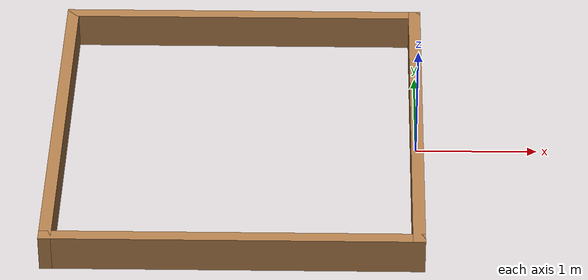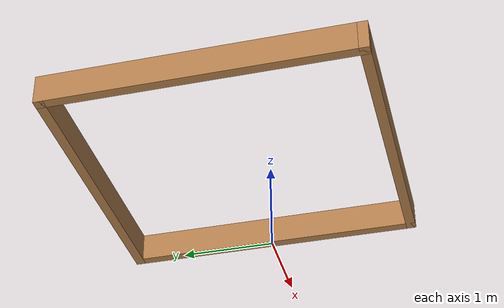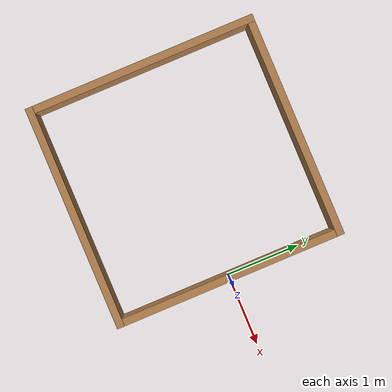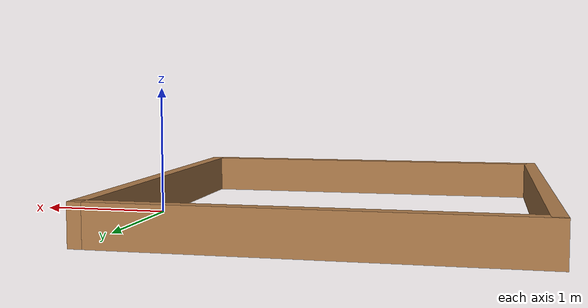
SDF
<?xml version='1.0'?>
<sdf version='1.7'>
  <model name='fg4walled'>
    <pose>-1.474 0 0 0 -0 0</pose>
    <link name='Wall_0'>
      <collision name='Wall_0_Collision'>
        <geometry>
          <box>
            <size>3.048 0.1 0.304</size>
          </box>
        </geometry>
        <pose>0 0 0.152 0 -0 0</pose>
      </collision>
      <visual name='Wall_0_Visual'>
        <pose>0 0 0.152 0 -0 0</pose>
        <geometry>
          <box>
            <size>3.048 0.1 0.304</size>
          </box>
        </geometry>
        <material>
          <script>
            <uri>file://media/materials/scripts/gazebo.material</uri>
            <name>Gazebo/Wood</name>
          </script>
          <ambient>1 1 1 1</ambient>
        </material>
        <meta>
          <layer>0</layer>
        </meta>
      </visual>
      <pose>-0 -1.524 0 0 -0 3.14159</pose>
    </link>
    <link name='Wall_3'>
      <collision name='Wall_3_Collision'>
        <geometry>
          <box>
            <size>3.148 0.1 0.304</size>
          </box>
        </geometry>
        <pose>0 0 0.152 0 -0 0</pose>
      </collision>
      <visual name='Wall_3_Visual'>
        <pose>0 0 0.152 0 -0 0</pose>
        <geometry>
          <box>
            <size>3.148 0.1 0.304</size>
          </box>
        </geometry>
        <material>
          <script>
            <uri>file://media/materials/scripts/gazebo.material</uri>
            <name>Gazebo/Wood</name>
          </script>
          <ambient>1 1 1 1</ambient>
        </material>
        <meta>
          <layer>0</layer>
        </meta>
      </visual>
      <pose>-1.474 0 0 0 -0 1.5708</pose>
    </link>
    <link name='Wall_5'>
      <collision name='Wall_5_Collision'>
        <geometry>
          <box>
            <size>3.048 0.1 0.304</size>
          </box>
        </geometry>
        <pose>0 0 0.152 0 -0 0</pose>
      </collision>
      <visual name='Wall_5_Visual'>
        <pose>0 0 0.152 0 -0 0</pose>
        <geometry>
          <box>
            <size>3.048 0.1 0.304</size>
          </box>
        </geometry>
        <material>
          <script>
            <uri>file://media/materials/scripts/gazebo.material</uri>
            <name>Gazebo/Wood</name>
          </script>
          <ambient>1 1 1 1</ambient>
        </material>
        <meta>
          <layer>0</layer>
        </meta>
      </visual>
      <pose>-0 1.524 0 0 -0 0</pose>
    </link>
    <link name='Wall_7'>
      <collision name='Wall_7_Collision'>
        <geometry>
          <box>
            <size>3.148 0.1 0.304</size>
          </box>
        </geometry>
        <pose>0 0 0.152 0 -0 0</pose>
      </collision>
      <visual name='Wall_7_Visual'>
        <pose>0 0 0.152 0 -0 0</pose>
        <geometry>
          <box>
            <size>3.148 0.1 0.304</size>
          </box>
        </geometry>
        <material>
          <script>
            <uri>file://media/materials/scripts/gazebo.material</uri>
            <name>Gazebo/Wood</name>
          </script>
          <ambient>1 1 1 1</ambient>
        </material>
        <meta>
          <layer>0</layer>
        </meta>
      </visual>
      <pose>1.474 0 0 0 -0 -1.5708</pose>
    </link>
    <static>1</static>
  </model>
</sdf>
